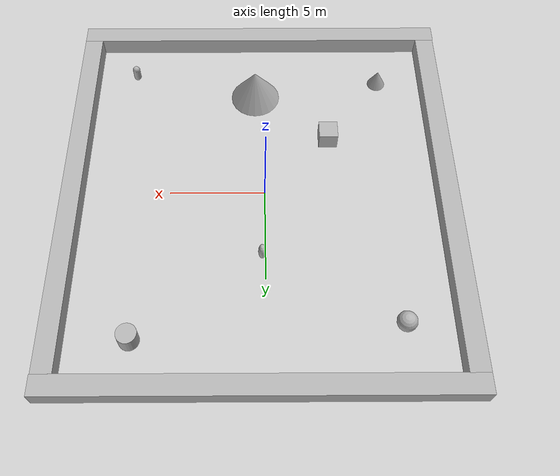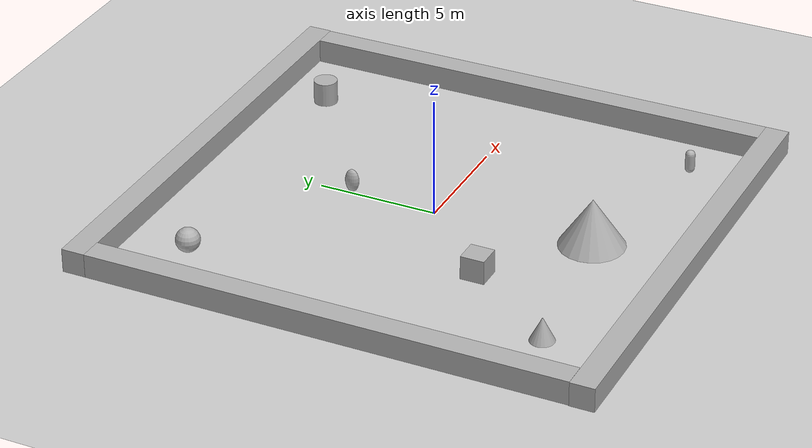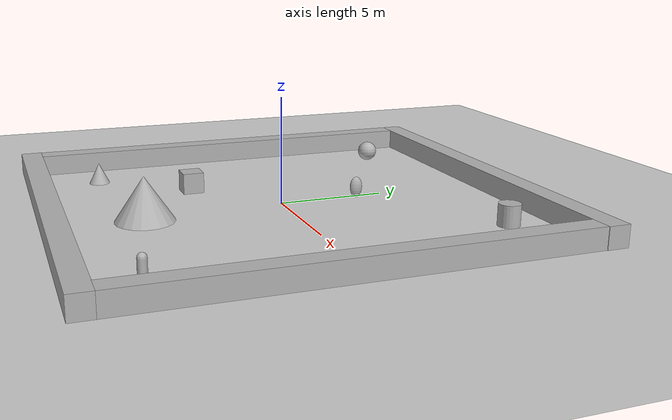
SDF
<sdf version="1.10">
 <world name="empty">
  <physics name="1ms" type="ignored">
   <max_step_size>0.001</max_step_size>
   <real_time_factor>1</real_time_factor>
   <real_time_update_rate>1000</real_time_update_rate>
  </physics>
  <plugin name="gz::sim::systems::Physics" filename="gz-sim-physics-system"/>
  <plugin name="gz::sim::systems::UserCommands" filename="gz-sim-user-commands-system"/>
  <plugin name="gz::sim::systems::SceneBroadcaster" filename="gz-sim-scene-broadcaster-system"/>
  <plugin name="gz::sim::systems::Contact" filename="gz-sim-contact-system"/>
  <gravity>0 0 -9.8000000000000007</gravity>
  <magnetic_field>5.5644999999999998e-06 2.2875799999999999e-05 -4.2388400000000002e-05</magnetic_field>
  <atmosphere type="adiabatic"/>
  <scene>
   <ambient>0.400000006 0.400000006 0.400000006 1</ambient>
   <background>0.699999988 0.699999988 0.699999988 1</background>
   <shadows>true</shadows>
  </scene>
  <model name="ground_plane">
   <static>true</static>
   <link name="link">
    <collision name="collision">
     <geometry><plane><normal>0 0 1</normal><size>100 100</size></plane></geometry>
    </collision>
    <visual name="visual">
     <geometry><plane><normal>0 0 1</normal><size>100 100</size></plane></geometry>
     <material>
      <ambient>0.800000012 0.800000012 0.800000012 1</ambient>
      <diffuse>0.800000012 0.800000012 0.800000012 1</diffuse>
      <specular>0.800000012 0.800000012 0.800000012 1</specular>
     </material>
    </visual>
    <inertial>
     <mass>1</mass>
     <inertia><ixx>1</ixx><ixy>0</ixy><ixz>0</ixz><iyy>1</iyy><iyz>0</iyz><izz>1</izz></inertia>
    </inertial>
   </link>
  </model>
  <model name="box">
   <pose>-9.4594259262084961 -0.0053153699263930321 0.5 0 0 0</pose>
   <link name="box_link">
    <inertial>
     <inertia><ixx>0.16666</ixx><ixy>0</ixy><ixz>0</ixz><iyy>0.16666</iyy><iyz>0</iyz><izz>0.16666</izz></inertia>
     <mass>1</mass>
    </inertial>
    <collision name="box_collision"><geometry><box><size>1 20 1</size></box></geometry></collision>
    <visual name="box_visual">
     <geometry><box><size>1 20 1</size></box></geometry>
     <material>
      <ambient>0.300000012 0.300000012 0.300000012 1</ambient>
      <diffuse>0.699999988 0.699999988 0.699999988 1</diffuse>
      <specular>1 1 1 1</specular>
     </material>
    </visual>
   </link>
   <static>false</static>
  </model>
  <model name="box_1">
   <pose>10.010098457336426 -0.024525599554181099 0.5 0 0 0</pose>
   <link name="box_link">
    <inertial>
     <inertia><ixx>0.16666</ixx><ixy>0</ixy><ixz>0</ixz><iyy>0.16666</iyy><iyz>0</iyz><izz>0.16666</izz></inertia>
     <mass>1</mass>
    </inertial>
    <collision name="box_collision"><geometry><box><size>1 20 1</size></box></geometry></collision>
    <visual name="box_visual">
     <geometry><box><size>1 20 1</size></box></geometry>
     <material>
      <ambient>0.300000012 0.300000012 0.300000012 1</ambient>
      <diffuse>0.699999988 0.699999988 0.699999988 1</diffuse>
      <specular>1 1 1 1</specular>
     </material>
    </visual>
   </link>
   <static>false</static>
  </model>
  <model name="box_0">
   <pose>0.25974050164222717 -10.51099967956543 0.5 0 0 0</pose>
   <link name="box_link">
    <inertial>
     <inertia><ixx>0.16666</ixx><ixy>0</ixy><ixz>0</ixz><iyy>0.16666</iyy><iyz>0</iyz><izz>0.16666</izz></inertia>
     <mass>1</mass>
    </inertial>
    <collision name="box_collision"><geometry><box><size>20.5 1 1</size></box></geometry></collision>
    <visual name="box_visual">
     <geometry><box><size>20.5 1 1</size></box></geometry>
     <material>
      <ambient>0.300000012 0.300000012 0.300000012 1</ambient>
      <diffuse>0.699999988 0.699999988 0.699999988 1</diffuse>
      <specular>1 1 1 1</specular>
     </material>
    </visual>
   </link>
   <static>false</static>
  </model>
  <model name="box_0_1">
   <pose>0.29270714580759716 10.475605625181856 0.5 0 0 0</pose>
   <link name="box_link">
    <inertial>
     <inertia><ixx>0.16666</ixx><ixy>0</ixy><ixz>0</ixz><iyy>0.16666</iyy><iyz>0</iyz><izz>0.16666</izz></inertia>
     <mass>1</mass>
    </inertial>
    <collision name="box_collision"><geometry><box><size>20.5 1 1</size></box></geometry></collision>
    <visual name="box_visual">
     <geometry><box><size>20.5 1 1</size></box></geometry>
     <material>
      <ambient>0.300000012 0.300000012 0.300000012 1</ambient>
      <diffuse>0.699999988 0.699999988 0.699999988 1</diffuse>
      <specular>1 1 1 1</specular>
     </material>
    </visual>
   </link>
   <static>false</static>
  </model>
  <model name="sphere">
   <pose>-6.5892213179504981 7.3925532917590182 0.5 0 0 0</pose>
   <link name="sphere_link">
    <inertial>
     <inertia>
      <ixx>0.10000000000000001</ixx>
      <ixy>0</ixy>
      <ixz>0</ixz>
      <iyy>0.10000000000000001</iyy>
      <iyz>0</iyz>
      <izz>0.10000000000000001</izz>
     </inertia>
     <mass>1</mass>
    </inertial>
    <collision name="sphere_collision"><geometry><sphere><radius>0.5</radius></sphere></geometry></collision>
    <visual name="sphere_visual">
     <geometry><sphere><radius>0.5</radius></sphere></geometry>
     <material>
      <ambient>0.300000012 0.300000012 0.300000012 1</ambient>
      <diffuse>0.699999988 0.699999988 0.699999988 1</diffuse>
      <specular>1 1 1 1</specular>
     </material>
    </visual>
   </link>
   <static>false</static>
  </model>
  <model name="cone">
   <pose>-6.5174929750924733 -7.478343035799643 0.5 0 0 0</pose>
   <link name="cone_link">
    <inertial>
     <inertia>
      <ixx>0.074999999999999997</ixx>
      <ixy>0</ixy>
      <ixz>0</ixz>
      <iyy>0.074999999999999997</iyy>
      <iyz>0</iyz>
      <izz>0.074999999999999997</izz>
     </inertia>
     <mass>1</mass>
    </inertial>
    <collision name="cone_collision">
     <geometry><cone><radius>0.5</radius><length>1</length></cone></geometry>
    </collision>
    <visual name="cone_visual">
     <geometry><cone><radius>0.5</radius><length>1</length></cone></geometry>
     <material>
      <ambient>0.300000012 0.300000012 0.300000012 1</ambient>
      <diffuse>0.699999988 0.699999988 0.699999988 1</diffuse>
      <specular>1 1 1 1</specular>
     </material>
    </visual>
   </link>
   <static>false</static>
  </model>
  <model name="cylinder">
   <pose>6.4271793365478516 8.1085596084594727 0.5 0 0 0</pose>
   <link name="cylinder_link">
    <inertial>
     <inertia>
      <ixx>0.14580000000000001</ixx>
      <ixy>0</ixy>
      <ixz>0</ixz>
      <iyy>0.14580000000000001</iyy>
      <iyz>0</iyz>
      <izz>0.125</izz>
     </inertia>
     <mass>1</mass>
    </inertial>
    <collision name="cylinder_collision">
     <geometry><cylinder><radius>0.5</radius><length>1</length></cylinder></geometry>
    </collision>
    <visual name="cylinder_visual">
     <geometry><cylinder><radius>0.5</radius><length>1</length></cylinder></geometry>
     <material>
      <ambient>0.300000012 0.300000012 0.300000012 1</ambient>
      <diffuse>0.699999988 0.699999988 0.699999988 1</diffuse>
      <specular>1 1 1 1</specular>
     </material>
    </visual>
   </link>
   <static>false</static>
  </model>
  <model name="capsule">
   <pose>7.3778877525841295 -7.9319856891186049 0.5 0 0 0</pose>
   <link name="capsule_link">
    <inertial>
     <inertia>
      <ixx>0.074153999999999998</ixx>
      <ixy>0</ixy>
      <ixz>0</ixz>
      <iyy>0.074153999999999998</iyy>
      <iyz>0</iyz>
      <izz>0.018769000000000001</izz>
     </inertia>
     <mass>1</mass>
    </inertial>
    <collision name="capsule_collision">
     <geometry>
      <capsule><radius>0.20000000000000001</radius><length>0.59999999999999998</length></capsule>
     </geometry>
    </collision>
    <visual name="capsule_visual">
     <geometry>
      <capsule><radius>0.20000000000000001</radius><length>0.59999999999999998</length></capsule>
     </geometry>
     <material>
      <ambient>0.300000012 0.300000012 0.300000012 1</ambient>
      <diffuse>0.699999988 0.699999988 0.699999988 1</diffuse>
      <specular>1 1 1 1</specular>
     </material>
    </visual>
   </link>
   <static>false</static>
  </model>
  <model name="ellipsoid">
   <pose>0.1703445887339079 3.7075076589077889 0.5 0 0 0</pose>
   <link name="ellipsoid_link">
    <inertial>
     <inertia>
      <ixx>0.068000000000000005</ixx>
      <ixy>0</ixy>
      <ixz>0</ixz>
      <iyy>0.058000000000000003</iyy>
      <iyz>0</iyz>
      <izz>0.025999999999999999</izz>
     </inertia>
     <mass>1</mass>
    </inertial>
    <collision name="ellipsoid_collision">
     <geometry><ellipsoid><radii>0.20000000000000001 0.29999999999999999 0.5</radii></ellipsoid></geometry>
    </collision>
    <visual name="ellipsoid_visual">
     <geometry><ellipsoid><radii>0.20000000000000001 0.29999999999999999 0.5</radii></ellipsoid></geometry>
     <material>
      <ambient>0.300000012 0.300000012 0.300000012 1</ambient>
      <diffuse>0.699999988 0.699999988 0.699999988 1</diffuse>
      <specular>1 1 1 1</specular>
     </material>
    </visual>
   </link>
   <static>false</static>
  </model>
  <model name="box_2">
   <pose>-3.4584967584220525 -3.4541447679650936 0.5 0 0 0</pose>
   <link name="box_link">
    <inertial>
     <inertia><ixx>0.16666</ixx><ixy>0</ixy><ixz>0</ixz><iyy>0.16666</iyy><iyz>0</iyz><izz>0.16666</izz></inertia>
     <mass>1</mass>
    </inertial>
    <collision name="box_collision"><geometry><box><size>1 1 1</size></box></geometry></collision>
    <visual name="box_visual">
     <geometry><box><size>1 1 1</size></box></geometry>
     <material>
      <ambient>0.300000012 0.300000012 0.300000012 1</ambient>
      <diffuse>0.699999988 0.699999988 0.699999988 1</diffuse>
      <specular>1 1 1 1</specular>
     </material>
    </visual>
   </link>
   <static>false</static>
  </model>
  <model name="cone_0">
   <pose>0.51075247365308929 -6.5196903847927912 0.5 0 0 0</pose>
   <link name="cone_link">
    <inertial>
     <inertia>
      <ixx>0.074999999999999997</ixx>
      <ixy>0</ixy>
      <ixz>0</ixz>
      <iyy>0.074999999999999997</iyy>
      <iyz>0</iyz>
      <izz>0.074999999999999997</izz>
     </inertia>
     <mass>1</mass>
    </inertial>
    <collision name="cone_collision">
     <geometry><cone><radius>2</radius><length>3</length></cone></geometry>
    </collision>
    <visual name="cone_visual">
     <geometry><cone><radius>2</radius><length>3</length></cone></geometry>
     <material>
      <ambient>0.300000012 0.300000012 0.300000012 1</ambient>
      <diffuse>0.699999988 0.699999988 0.699999988 1</diffuse>
      <specular>1 1 1 1</specular>
     </material>
    </visual>
   </link>
   <static>false</static>
  </model>
  <light name="sun" type="directional">
   <pose>0 0 10 0 0 0</pose>
   <intensity>1</intensity>
   <direction>-0.5 0.10000000000000001 -0.90000000000000002</direction>
   <diffuse>0.800000012 0.800000012 0.800000012 1</diffuse>
   <specular>0.200000003 0.200000003 0.200000003 1</specular>
   <attenuation>
    <range>1000</range>
    <linear>0.01</linear>
    <constant>0.90000000000000002</constant>
    <quadratic>0.001</quadratic>
   </attenuation>
   <spot><inner_angle>0</inner_angle><outer_angle>0</outer_angle><falloff>0</falloff></spot>
  </light>
 </world>
</sdf>
